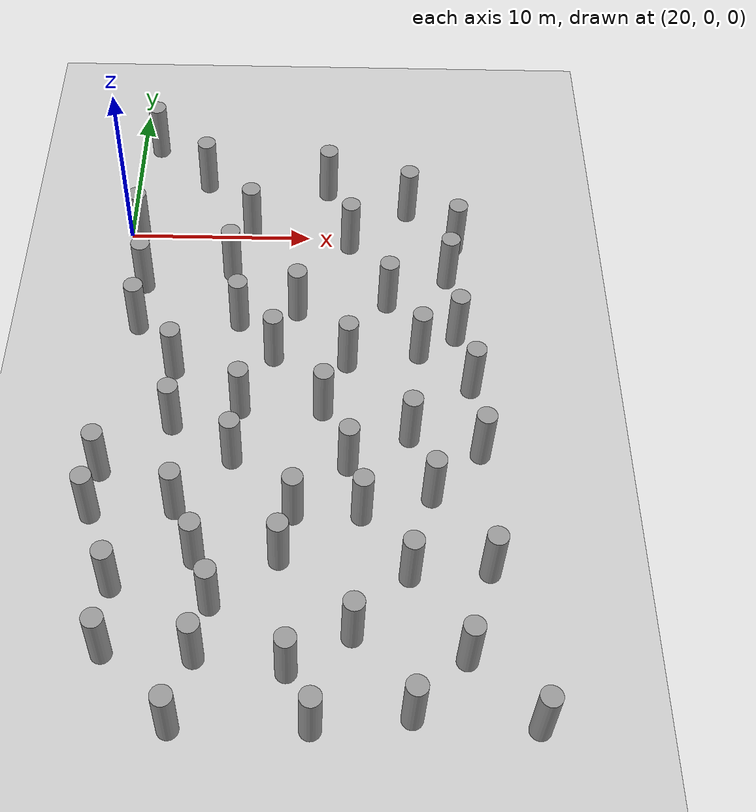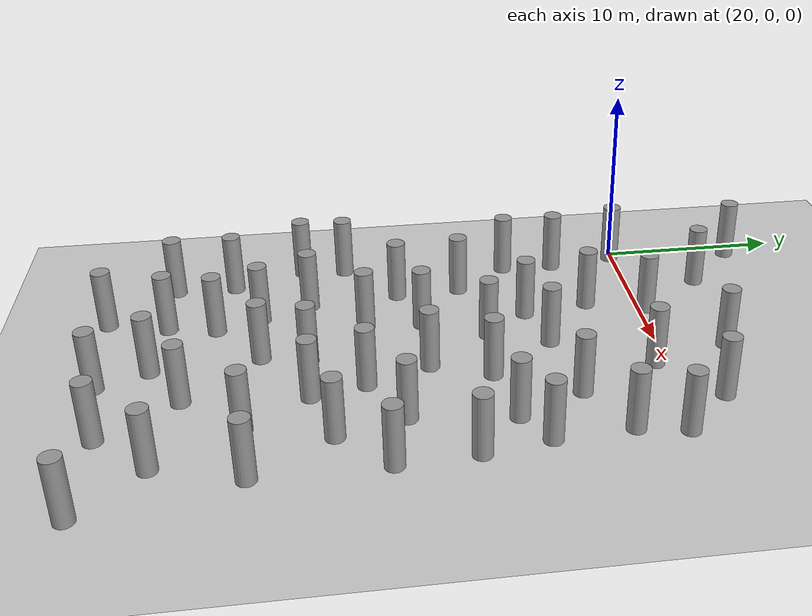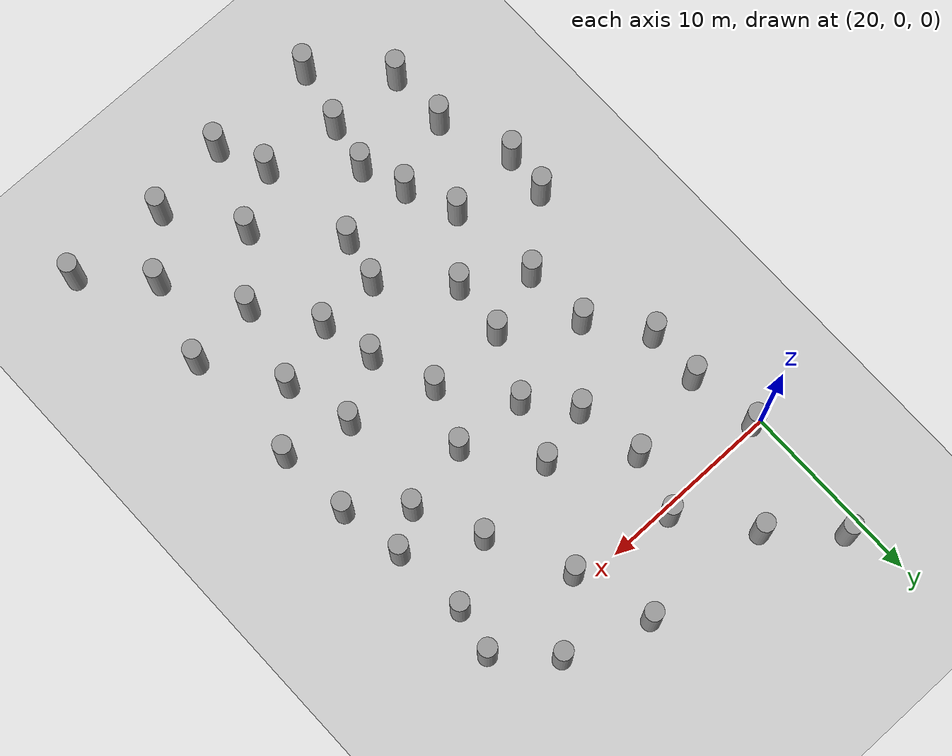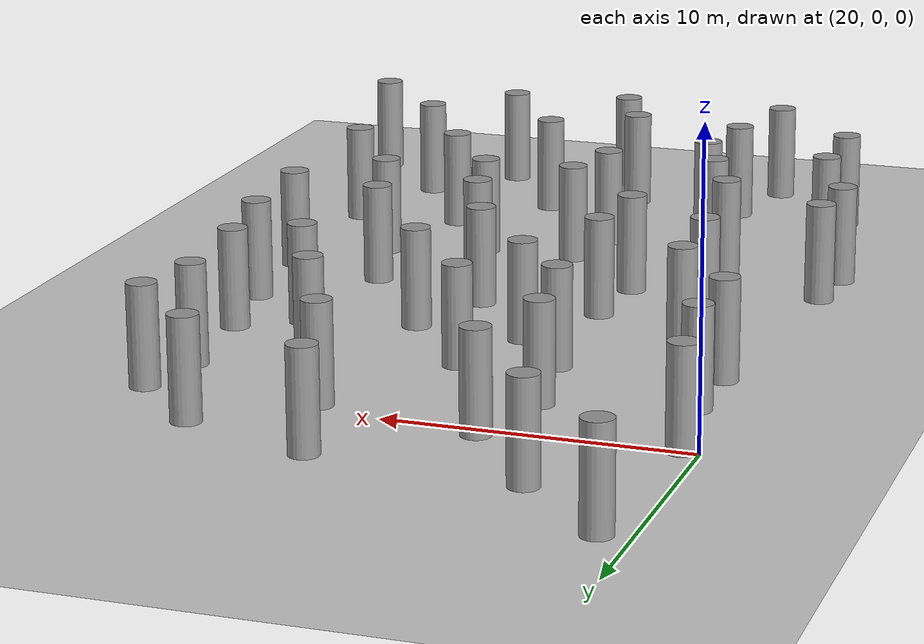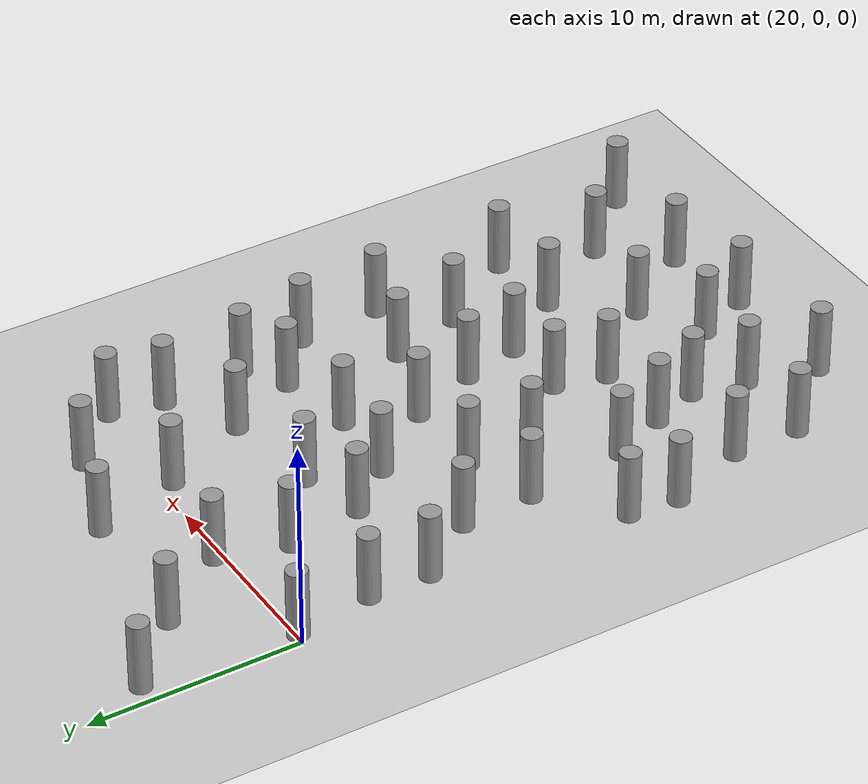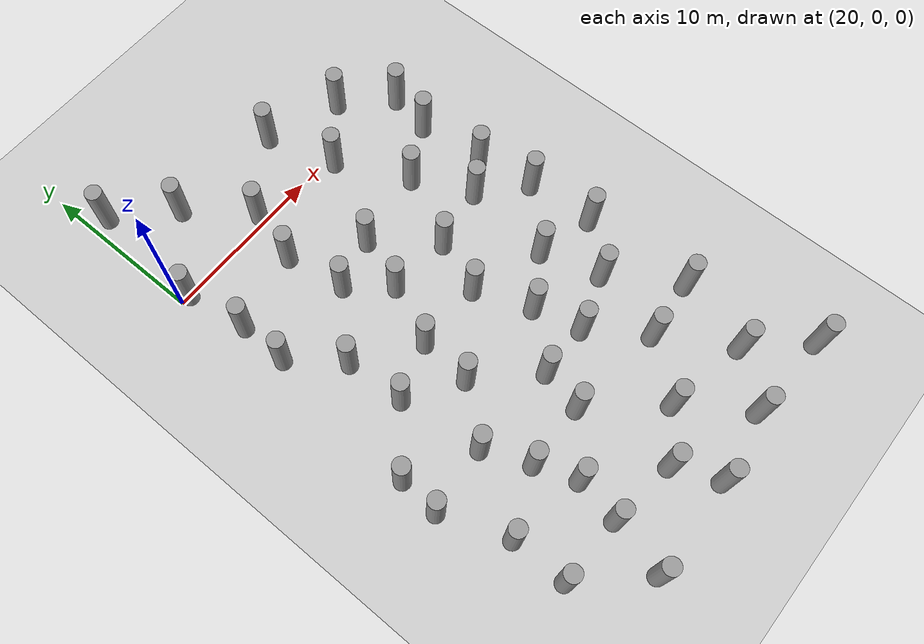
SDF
<sdf version="1.6">
 <world name="default">
  <model name="ground_plane">
   <static>1</static>
   <link name="link">
    <collision name="collision">
     <geometry><plane><normal>0 0 1</normal><size>5000 5000</size></plane></geometry>
     <surface><friction><ode><mu>1</mu><mu2>2</mu2></ode></friction></surface>
    </collision>
    <visual name="runway">
     <cast_shadows>0</cast_shadows>
     <geometry><plane><normal>0 0 1</normal><size>700 700</size></plane></geometry>
     <material>
      <script><uri>file://media/materials/scripts/gazebo.material</uri><name>Gazebo/Gray</name></script>
     </material>
    </visual>
   </link>
  </model>
  <model name="unit_cylinder_clone_0_clone_clone_8">
   <link name="link">
    <inertial>
     <mass>1</mass>
     <inertia><ixx>0.145833</ixx><ixy>0</ixy><ixz>0</ixz><iyy>0.145833</iyy><iyz>0</iyz><izz>0.125</izz></inertia>
    </inertial>
    <gravity>0</gravity>
    <visual name="visual">
     <geometry><cylinder><radius>0.5</radius><length>3.42215</length></cylinder></geometry>
     <material>
      <script><name>Gazebo/Grey</name><uri>file://media/materials/scripts/gazebo.material</uri></script>
      <shader type="pixel"><normal_map>__default__</normal_map></shader>
     </material>
    </visual>
   </link>
   <static>0</static>
   <pose>20.5566 -0.116077 1.71107 0 0 -0.000115</pose>
  </model>
  <model name="unit_cylinder_clone_0_clone_clone_10">
   <link name="link">
    <inertial>
     <mass>1</mass>
     <inertia><ixx>0.145833</ixx><ixy>0</ixy><ixz>0</ixz><iyy>0.145833</iyy><iyz>0</iyz><izz>0.125</izz></inertia>
    </inertial>
    <gravity>0</gravity>
    <visual name="visual">
     <geometry><cylinder><radius>0.5</radius><length>3.42215</length></cylinder></geometry>
     <material>
      <script><name>Gazebo/Grey</name><uri>file://media/materials/scripts/gazebo.material</uri></script>
      <shader type="pixel"><normal_map>__default__</normal_map></shader>
     </material>
    </visual>
   </link>
   <static>0</static>
   <pose>25.8377 -2.81658 1.71107 0 0 -0.000115</pose>
  </model>
  <model name="unit_cylinder_clone_0_clone_clone_11">
   <link name="link">
    <inertial>
     <mass>1</mass>
     <inertia><ixx>0.145833</ixx><ixy>0</ixy><ixz>0</ixz><iyy>0.145833</iyy><iyz>0</iyz><izz>0.125</izz></inertia>
    </inertial>
    <gravity>0</gravity>
    <visual name="visual">
     <geometry><cylinder><radius>0.5</radius><length>3.42215</length></cylinder></geometry>
     <material>
      <script><name>Gazebo/Grey</name><uri>file://media/materials/scripts/gazebo.material</uri></script>
      <shader type="pixel"><normal_map>__default__</normal_map></shader>
     </material>
    </visual>
   </link>
   <static>0</static>
   <pose>21.0532 -6.77808 1.71107 0 0 -0.000115</pose>
  </model>
  <model name="unit_cylinder_clone_0_clone_clone_12">
   <link name="link">
    <inertial>
     <mass>1</mass>
     <inertia><ixx>0.145833</ixx><ixy>0</ixy><ixz>0</ixz><iyy>0.145833</iyy><iyz>0</iyz><izz>0.125</izz></inertia>
    </inertial>
    <gravity>0</gravity>
    <visual name="visual">
     <geometry><cylinder><radius>0.5</radius><length>3.42215</length></cylinder></geometry>
     <material>
      <script><name>Gazebo/Grey</name><uri>file://media/materials/scripts/gazebo.material</uri></script>
      <shader type="pixel"><normal_map>__default__</normal_map></shader>
     </material>
    </visual>
   </link>
   <static>0</static>
   <pose>32.2475 -0.639695 1.71107 0 0 -0.000115</pose>
  </model>
  <model name="unit_cylinder_clone_0_clone_clone_13">
   <link name="link">
    <inertial>
     <mass>1</mass>
     <inertia><ixx>0.145833</ixx><ixy>0</ixy><ixz>0</ixz><iyy>0.145833</iyy><iyz>0</iyz><izz>0.125</izz></inertia>
    </inertial>
    <gravity>0</gravity>
    <visual name="visual">
     <geometry><cylinder><radius>0.5</radius><length>3.42215</length></cylinder></geometry>
     <material>
      <script><name>Gazebo/Grey</name><uri>file://media/materials/scripts/gazebo.material</uri></script>
      <shader type="pixel"><normal_map>__default__</normal_map></shader>
     </material>
    </visual>
   </link>
   <static>0</static>
   <pose>26.7729 0.402254 1.71107 0 0 -0.000115</pose>
  </model>
  <model name="unit_cylinder_clone_0_clone_clone_14">
   <link name="link">
    <inertial>
     <mass>1</mass>
     <inertia><ixx>0.145833</ixx><ixy>0</ixy><ixz>0</ixz><iyy>0.145833</iyy><iyz>0</iyz><izz>0.125</izz></inertia>
    </inertial>
    <gravity>0</gravity>
    <visual name="visual">
     <geometry><cylinder><radius>0.5</radius><length>3.42215</length></cylinder></geometry>
     <material>
      <script><name>Gazebo/Grey</name><uri>file://media/materials/scripts/gazebo.material</uri></script>
      <shader type="pixel"><normal_map>__default__</normal_map></shader>
     </material>
    </visual>
   </link>
   <static>0</static>
   <pose>24.07 4.06268 1.71107 0 0 -0.000115</pose>
  </model>
  <model name="unit_cylinder_clone_0_clone_clone_15">
   <link name="link">
    <inertial>
     <mass>1</mass>
     <inertia><ixx>0.145833</ixx><ixy>0</ixy><ixz>0</ixz><iyy>0.145833</iyy><iyz>0</iyz><izz>0.125</izz></inertia>
    </inertial>
    <gravity>0</gravity>
    <visual name="visual">
     <geometry><cylinder><radius>0.5</radius><length>3.42215</length></cylinder></geometry>
     <material>
      <script><name>Gazebo/Grey</name><uri>file://media/materials/scripts/gazebo.material</uri></script>
      <shader type="pixel"><normal_map>__default__</normal_map></shader>
     </material>
    </visual>
   </link>
   <static>0</static>
   <pose>31 3.55903 1.71107 0 0 -0.000115</pose>
  </model>
  <model name="unit_cylinder_clone_0_clone_clone_16">
   <link name="link">
    <inertial>
     <mass>1</mass>
     <inertia><ixx>0.145833</ixx><ixy>0</ixy><ixz>0</ixz><iyy>0.145833</iyy><iyz>0</iyz><izz>0.125</izz></inertia>
    </inertial>
    <gravity>0</gravity>
    <visual name="visual">
     <geometry><cylinder><radius>0.5</radius><length>3.42215</length></cylinder></geometry>
     <material>
      <script><name>Gazebo/Grey</name><uri>file://media/materials/scripts/gazebo.material</uri></script>
      <shader type="pixel"><normal_map>__default__</normal_map></shader>
     </material>
    </visual>
   </link>
   <static>0</static>
   <pose>21 7 1.71107 0 0 -0.000115</pose>
  </model>
  <model name="unit_cylinder_clone_0_clone_clone_17">
   <link name="link">
    <inertial>
     <mass>1</mass>
     <inertia><ixx>0.145833</ixx><ixy>0</ixy><ixz>0</ixz><iyy>0.145833</iyy><iyz>0</iyz><izz>0.125</izz></inertia>
    </inertial>
    <gravity>0</gravity>
    <visual name="visual">
     <geometry><cylinder><radius>0.5</radius><length>3.42215</length></cylinder></geometry>
     <material>
      <script><name>Gazebo/Grey</name><uri>file://media/materials/scripts/gazebo.material</uri></script>
      <shader type="pixel"><normal_map>__default__</normal_map></shader>
     </material>
    </visual>
   </link>
   <static>0</static>
   <pose>35.4755 1.99846 1.71107 0 0 -0.000115</pose>
  </model>
  <model name="unit_cylinder_clone_0_clone_clone_18">
   <link name="link">
    <inertial>
     <mass>1</mass>
     <inertia><ixx>0.145833</ixx><ixy>0</ixy><ixz>0</ixz><iyy>0.145833</iyy><iyz>0</iyz><izz>0.125</izz></inertia>
    </inertial>
    <gravity>0</gravity>
    <visual name="visual">
     <geometry><cylinder><radius>0.5</radius><length>3.42215</length></cylinder></geometry>
     <material>
      <script><name>Gazebo/Grey</name><uri>file://media/materials/scripts/gazebo.material</uri></script>
      <shader type="pixel"><normal_map>__default__</normal_map></shader>
     </material>
    </visual>
   </link>
   <static>0</static>
   <pose>37.5335 -3.11037 1.71107 0 0 -0.000115</pose>
  </model>
  <model name="unit_cylinder_clone_0_clone_clone_19">
   <link name="link">
    <inertial>
     <mass>1</mass>
     <inertia><ixx>0.145833</ixx><ixy>0</ixy><ixz>0</ixz><iyy>0.145833</iyy><iyz>0</iyz><izz>0.125</izz></inertia>
    </inertial>
    <gravity>0</gravity>
    <visual name="visual">
     <geometry><cylinder><radius>0.5</radius><length>3.42215</length></cylinder></geometry>
     <material>
      <script><name>Gazebo/Grey</name><uri>file://media/materials/scripts/gazebo.material</uri></script>
      <shader type="pixel"><normal_map>__default__</normal_map></shader>
     </material>
    </visual>
   </link>
   <static>0</static>
   <pose>34.2685 -4.92029 1.71107 0 0 -0.000115</pose>
  </model>
  <model name="unit_cylinder_clone_0_clone_clone_20">
   <link name="link">
    <inertial>
     <mass>1</mass>
     <inertia><ixx>0.145833</ixx><ixy>0</ixy><ixz>0</ixz><iyy>0.145833</iyy><iyz>0</iyz><izz>0.125</izz></inertia>
    </inertial>
    <gravity>0</gravity>
    <visual name="visual">
     <geometry><cylinder><radius>0.5</radius><length>3.42215</length></cylinder></geometry>
     <material>
      <script><name>Gazebo/Grey</name><uri>file://media/materials/scripts/gazebo.material</uri></script>
      <shader type="pixel"><normal_map>__default__</normal_map></shader>
     </material>
    </visual>
   </link>
   <static>0</static>
   <pose>38.4674 -10.5798 1.71107 0 0 -0.000115</pose>
  </model>
  <model name="unit_cylinder_clone_0_clone_clone_21">
   <link name="link">
    <inertial>
     <mass>1</mass>
     <inertia><ixx>0.145833</ixx><ixy>0</ixy><ixz>0</ixz><iyy>0.145833</iyy><iyz>0</iyz><izz>0.125</izz></inertia>
    </inertial>
    <gravity>0</gravity>
    <visual name="visual">
     <geometry><cylinder><radius>0.5</radius><length>3.42215</length></cylinder></geometry>
     <material>
      <script><name>Gazebo/Grey</name><uri>file://media/materials/scripts/gazebo.material</uri></script>
      <shader type="pixel"><normal_map>__default__</normal_map></shader>
     </material>
    </visual>
   </link>
   <static>0</static>
   <pose>32.1445 -9.07488 1.71107 0 0 -0.000115</pose>
  </model>
  <model name="unit_cylinder_clone_0_clone_clone_22">
   <link name="link">
    <inertial>
     <mass>1</mass>
     <inertia><ixx>0.145833</ixx><ixy>0</ixy><ixz>0</ixz><iyy>0.145833</iyy><iyz>0</iyz><izz>0.125</izz></inertia>
    </inertial>
    <gravity>0</gravity>
    <visual name="visual">
     <geometry><cylinder><radius>0.5</radius><length>3.42215</length></cylinder></geometry>
     <material>
      <script><name>Gazebo/Grey</name><uri>file://media/materials/scripts/gazebo.material</uri></script>
      <shader type="pixel"><normal_map>__default__</normal_map></shader>
     </material>
    </visual>
   </link>
   <static>0</static>
   <pose>29.4758 -5.60259 1.71107 0 0 -0.000115</pose>
  </model>
  <model name="unit_cylinder_clone_0_clone_clone_23">
   <link name="link">
    <inertial>
     <mass>1</mass>
     <inertia><ixx>0.145833</ixx><ixy>0</ixy><ixz>0</ixz><iyy>0.145833</iyy><iyz>0</iyz><izz>0.125</izz></inertia>
    </inertial>
    <gravity>0</gravity>
    <visual name="visual">
     <geometry><cylinder><radius>0.5</radius><length>3.42215</length></cylinder></geometry>
     <material>
      <script><name>Gazebo/Grey</name><uri>file://media/materials/scripts/gazebo.material</uri></script>
      <shader type="pixel"><normal_map>__default__</normal_map></shader>
     </material>
    </visual>
   </link>
   <static>0</static>
   <pose>38.0442 -0.58433 1.71107 0 0 -0.000115</pose>
  </model>
  <model name="unit_cylinder_clone_0_clone_clone_24">
   <link name="link">
    <inertial>
     <mass>1</mass>
     <inertia><ixx>0.145833</ixx><ixy>0</ixy><ixz>0</ixz><iyy>0.145833</iyy><iyz>0</iyz><izz>0.125</izz></inertia>
    </inertial>
    <gravity>0</gravity>
    <visual name="visual">
     <geometry><cylinder><radius>0.5</radius><length>3.42215</length></cylinder></geometry>
     <material>
      <script><name>Gazebo/Grey</name><uri>file://media/materials/scripts/gazebo.material</uri></script>
      <shader type="pixel"><normal_map>__default__</normal_map></shader>
     </material>
    </visual>
   </link>
   <static>0</static>
   <pose>37.8456 -7.15705 1.71107 0 0 -0.000115</pose>
  </model>
  <model name="unit_cylinder_clone_0_clone_clone_25">
   <link name="link">
    <inertial>
     <mass>1</mass>
     <inertia><ixx>0.145833</ixx><ixy>0</ixy><ixz>0</ixz><iyy>0.145833</iyy><iyz>0</iyz><izz>0.125</izz></inertia>
    </inertial>
    <gravity>0</gravity>
    <visual name="visual">
     <geometry><cylinder><radius>0.5</radius><length>3.42215</length></cylinder></geometry>
     <material>
      <script><name>Gazebo/Grey</name><uri>file://media/materials/scripts/gazebo.material</uri></script>
      <shader type="pixel"><normal_map>__default__</normal_map></shader>
     </material>
    </visual>
   </link>
   <static>0</static>
   <pose>35.8829 -8.38323 1.71107 0 0 -0.000115</pose>
  </model>
  <model name="unit_cylinder_clone_0_clone_clone_26">
   <link name="link">
    <inertial>
     <mass>1</mass>
     <inertia><ixx>0.145833</ixx><ixy>0</ixy><ixz>0</ixz><iyy>0.145833</iyy><iyz>0</iyz><izz>0.125</izz></inertia>
    </inertial>
    <gravity>0</gravity>
    <visual name="visual">
     <geometry><cylinder><radius>0.5</radius><length>3.42215</length></cylinder></geometry>
     <material>
      <script><name>Gazebo/Grey</name><uri>file://media/materials/scripts/gazebo.material</uri></script>
      <shader type="pixel"><normal_map>__default__</normal_map></shader>
     </material>
    </visual>
   </link>
   <static>0</static>
   <pose>35.2555 -13.7054 1.71107 0 0 -0.000115</pose>
  </model>
  <model name="unit_cylinder_clone_0_clone_clone_27">
   <link name="link">
    <inertial>
     <mass>1</mass>
     <inertia><ixx>0.145833</ixx><ixy>0</ixy><ixz>0</ixz><iyy>0.145833</iyy><iyz>0</iyz><izz>0.125</izz></inertia>
    </inertial>
    <gravity>0</gravity>
    <visual name="visual">
     <geometry><cylinder><radius>0.5</radius><length>3.42215</length></cylinder></geometry>
     <material>
      <script><name>Gazebo/Grey</name><uri>file://media/materials/scripts/gazebo.material</uri></script>
      <shader type="pixel"><normal_map>__default__</normal_map></shader>
     </material>
    </visual>
   </link>
   <static>0</static>
   <pose>30.9358 -12.1807 1.71107 0 0 -0.000115</pose>
  </model>
  <model name="unit_cylinder_clone_0_clone_clone_28">
   <link name="link">
    <inertial>
     <mass>1</mass>
     <inertia><ixx>0.145833</ixx><ixy>0</ixy><ixz>0</ixz><iyy>0.145833</iyy><iyz>0</iyz><izz>0.125</izz></inertia>
    </inertial>
    <gravity>0</gravity>
    <visual name="visual">
     <geometry><cylinder><radius>0.5</radius><length>3.42215</length></cylinder></geometry>
     <material>
      <script><name>Gazebo/Grey</name><uri>file://media/materials/scripts/gazebo.material</uri></script>
      <shader type="pixel"><normal_map>__default__</normal_map></shader>
     </material>
    </visual>
   </link>
   <static>0</static>
   <pose>32.2011 -15.4854 1.71107 0 0 -0.000115</pose>
  </model>
  <model name="unit_cylinder_clone_0_clone_clone_29">
   <link name="link">
    <inertial>
     <mass>1</mass>
     <inertia><ixx>0.145833</ixx><ixy>0</ixy><ixz>0</ixz><iyy>0.145833</iyy><iyz>0</iyz><izz>0.125</izz></inertia>
    </inertial>
    <gravity>0</gravity>
    <visual name="visual">
     <geometry><cylinder><radius>0.5</radius><length>3.42215</length></cylinder></geometry>
     <material>
      <script><name>Gazebo/Grey</name><uri>file://media/materials/scripts/gazebo.material</uri></script>
      <shader type="pixel"><normal_map>__default__</normal_map></shader>
     </material>
    </visual>
   </link>
   <static>0</static>
   <pose>38.7271 -14.6175 1.71107 0 0 -0.000115</pose>
  </model>
  <model name="unit_cylinder_clone_0_clone_clone_30">
   <link name="link">
    <inertial>
     <mass>1</mass>
     <inertia><ixx>0.145833</ixx><ixy>0</ixy><ixz>0</ixz><iyy>0.145833</iyy><iyz>0</iyz><izz>0.125</izz></inertia>
    </inertial>
    <gravity>0</gravity>
    <visual name="visual">
     <geometry><cylinder><radius>0.5</radius><length>3.42215</length></cylinder></geometry>
     <material>
      <script><name>Gazebo/Grey</name><uri>file://media/materials/scripts/gazebo.material</uri></script>
      <shader type="pixel"><normal_map>__default__</normal_map></shader>
     </material>
    </visual>
   </link>
   <static>0</static>
   <pose>36.249 -17.2065 1.71107 0 0 -0.000115</pose>
  </model>
  <model name="unit_cylinder_clone_0_clone_clone_31">
   <link name="link">
    <inertial>
     <mass>1</mass>
     <inertia><ixx>0.145833</ixx><ixy>0</ixy><ixz>0</ixz><iyy>0.145833</iyy><iyz>0</iyz><izz>0.125</izz></inertia>
    </inertial>
    <gravity>0</gravity>
    <visual name="visual">
     <geometry><cylinder><radius>0.5</radius><length>3.42215</length></cylinder></geometry>
     <material>
      <script><name>Gazebo/Grey</name><uri>file://media/materials/scripts/gazebo.material</uri></script>
      <shader type="pixel"><normal_map>__default__</normal_map></shader>
     </material>
    </visual>
   </link>
   <static>0</static>
   <pose>28.3271 -8.74701 1.71107 0 0 -0.000115</pose>
  </model>
  <model name="unit_cylinder_clone_0_clone_clone_32">
   <link name="link">
    <inertial>
     <mass>1</mass>
     <inertia><ixx>0.145833</ixx><ixy>0</ixy><ixz>0</ixz><iyy>0.145833</iyy><iyz>0</iyz><izz>0.125</izz></inertia>
    </inertial>
    <gravity>0</gravity>
    <visual name="visual">
     <geometry><cylinder><radius>0.5</radius><length>3.42215</length></cylinder></geometry>
     <material>
      <script><name>Gazebo/Grey</name><uri>file://media/materials/scripts/gazebo.material</uri></script>
      <shader type="pixel"><normal_map>__default__</normal_map></shader>
     </material>
    </visual>
   </link>
   <static>0</static>
   <pose>26.4165 -6.41392 1.71107 0 0 -0.000115</pose>
  </model>
  <model name="unit_cylinder_clone_0_clone_clone_33">
   <link name="link">
    <inertial>
     <mass>1</mass>
     <inertia><ixx>0.145833</ixx><ixy>0</ixy><ixz>0</ixz><iyy>0.145833</iyy><iyz>0</iyz><izz>0.125</izz></inertia>
    </inertial>
    <gravity>0</gravity>
    <visual name="visual">
     <geometry><cylinder><radius>0.5</radius><length>3.42215</length></cylinder></geometry>
     <material>
      <script><name>Gazebo/Grey</name><uri>file://media/materials/scripts/gazebo.material</uri></script>
      <shader type="pixel"><normal_map>__default__</normal_map></shader>
     </material>
    </visual>
   </link>
   <static>0</static>
   <pose>32.8631 -18.2926 1.71107 0 0 -0.000115</pose>
  </model>
  <model name="unit_cylinder_clone_0_clone_clone_34">
   <link name="link">
    <inertial>
     <mass>1</mass>
     <inertia><ixx>0.145833</ixx><ixy>0</ixy><ixz>0</ixz><iyy>0.145833</iyy><iyz>0</iyz><izz>0.125</izz></inertia>
    </inertial>
    <gravity>0</gravity>
    <visual name="visual">
     <geometry><cylinder><radius>0.5</radius><length>3.42215</length></cylinder></geometry>
     <material>
      <script><name>Gazebo/Grey</name><uri>file://media/materials/scripts/gazebo.material</uri></script>
      <shader type="pixel"><normal_map>__default__</normal_map></shader>
     </material>
    </visual>
   </link>
   <static>0</static>
   <pose>38.8045 -21.2037 1.71107 0 0 -0.000115</pose>
  </model>
  <model name="unit_cylinder_clone_0_clone_clone_35">
   <link name="link">
    <inertial>
     <mass>1</mass>
     <inertia><ixx>0.145833</ixx><ixy>0</ixy><ixz>0</ixz><iyy>0.145833</iyy><iyz>0</iyz><izz>0.125</izz></inertia>
    </inertial>
    <gravity>0</gravity>
    <visual name="visual">
     <geometry><cylinder><radius>0.5</radius><length>3.42215</length></cylinder></geometry>
     <material>
      <script><name>Gazebo/Grey</name><uri>file://media/materials/scripts/gazebo.material</uri></script>
      <shader type="pixel"><normal_map>__default__</normal_map></shader>
     </material>
    </visual>
   </link>
   <static>0</static>
   <pose>35.0796 -21.5183 1.71107 0 0 -0.000115</pose>
  </model>
  <model name="unit_cylinder_clone_0_clone_clone_36">
   <link name="link">
    <inertial>
     <mass>1</mass>
     <inertia><ixx>0.145833</ixx><ixy>0</ixy><ixz>0</ixz><iyy>0.145833</iyy><iyz>0</iyz><izz>0.125</izz></inertia>
    </inertial>
    <gravity>0</gravity>
    <visual name="visual">
     <geometry><cylinder><radius>0.5</radius><length>3.42215</length></cylinder></geometry>
     <material>
      <script><name>Gazebo/Grey</name><uri>file://media/materials/scripts/gazebo.material</uri></script>
      <shader type="pixel"><normal_map>__default__</normal_map></shader>
     </material>
    </visual>
   </link>
   <static>0</static>
   <pose>37.5225 -25.6124 1.71107 0 0 -0.000115</pose>
  </model>
  <model name="unit_cylinder_clone_0_clone_clone_37">
   <link name="link">
    <inertial>
     <mass>1</mass>
     <inertia><ixx>0.145833</ixx><ixy>0</ixy><ixz>0</ixz><iyy>0.145833</iyy><iyz>0</iyz><izz>0.125</izz></inertia>
    </inertial>
    <gravity>0</gravity>
    <visual name="visual">
     <geometry><cylinder><radius>0.5</radius><length>3.42215</length></cylinder></geometry>
     <material>
      <script><name>Gazebo/Grey</name><uri>file://media/materials/scripts/gazebo.material</uri></script>
      <shader type="pixel"><normal_map>__default__</normal_map></shader>
     </material>
    </visual>
   </link>
   <static>0</static>
   <pose>32.4353 -24.5963 1.71107 0 0 -0.000115</pose>
  </model>
  <model name="unit_cylinder_clone_0_clone_clone_38">
   <link name="link">
    <inertial>
     <mass>1</mass>
     <inertia><ixx>0.145833</ixx><ixy>0</ixy><ixz>0</ixz><iyy>0.145833</iyy><iyz>0</iyz><izz>0.125</izz></inertia>
    </inertial>
    <gravity>0</gravity>
    <visual name="visual">
     <geometry><cylinder><radius>0.5</radius><length>3.42215</length></cylinder></geometry>
     <material>
      <script><name>Gazebo/Grey</name><uri>file://media/materials/scripts/gazebo.material</uri></script>
      <shader type="pixel"><normal_map>__default__</normal_map></shader>
     </material>
    </visual>
   </link>
   <static>0</static>
   <pose>29.018 -20.7801 1.71107 0 0 -0.000115</pose>
  </model>
  <model name="unit_cylinder_clone_0_clone_clone_39">
   <link name="link">
    <inertial>
     <mass>1</mass>
     <inertia><ixx>0.145833</ixx><ixy>0</ixy><ixz>0</ixz><iyy>0.145833</iyy><iyz>0</iyz><izz>0.125</izz></inertia>
    </inertial>
    <gravity>0</gravity>
    <visual name="visual">
     <geometry><cylinder><radius>0.5</radius><length>3.42215</length></cylinder></geometry>
     <material>
      <script><name>Gazebo/Grey</name><uri>file://media/materials/scripts/gazebo.material</uri></script>
      <shader type="pixel"><normal_map>__default__</normal_map></shader>
     </material>
    </visual>
   </link>
   <static>0</static>
   <pose>35.0216 -28.3657 1.71107 0 0 -0.000115</pose>
  </model>
  <model name="unit_cylinder_clone_0_clone_clone_40">
   <link name="link">
    <inertial>
     <mass>1</mass>
     <inertia><ixx>0.145833</ixx><ixy>0</ixy><ixz>0</ixz><iyy>0.145833</iyy><iyz>0</iyz><izz>0.125</izz></inertia>
    </inertial>
    <gravity>0</gravity>
    <visual name="visual">
     <geometry><cylinder><radius>0.5</radius><length>3.42215</length></cylinder></geometry>
     <material>
      <script><name>Gazebo/Grey</name><uri>file://media/materials/scripts/gazebo.material</uri></script>
      <shader type="pixel"><normal_map>__default__</normal_map></shader>
     </material>
    </visual>
   </link>
   <static>0</static>
   <pose>40.4627 -28.7053 1.71107 0 0 -0.000115</pose>
  </model>
  <model name="unit_cylinder_clone_0_clone_clone_41">
   <link name="link">
    <inertial>
     <mass>1</mass>
     <inertia><ixx>0.145833</ixx><ixy>0</ixy><ixz>0</ixz><iyy>0.145833</iyy><iyz>0</iyz><izz>0.125</izz></inertia>
    </inertial>
    <gravity>0</gravity>
    <visual name="visual">
     <geometry><cylinder><radius>0.5</radius><length>3.42215</length></cylinder></geometry>
     <material>
      <script><name>Gazebo/Grey</name><uri>file://media/materials/scripts/gazebo.material</uri></script>
      <shader type="pixel"><normal_map>__default__</normal_map></shader>
     </material>
    </visual>
   </link>
   <static>0</static>
   <pose>29.5475 -26.3741 1.71107 0 0 -0.000115</pose>
  </model>
  <model name="unit_cylinder_clone_0_clone_clone_42">
   <link name="link">
    <inertial>
     <mass>1</mass>
     <inertia><ixx>0.145833</ixx><ixy>0</ixy><ixz>0</ixz><iyy>0.145833</iyy><iyz>0</iyz><izz>0.125</izz></inertia>
    </inertial>
    <gravity>0</gravity>
    <visual name="visual">
     <geometry><cylinder><radius>0.5</radius><length>3.42215</length></cylinder></geometry>
     <material>
      <script><name>Gazebo/Grey</name><uri>file://media/materials/scripts/gazebo.material</uri></script>
      <shader type="pixel"><normal_map>__default__</normal_map></shader>
     </material>
    </visual>
   </link>
   <static>0</static>
   <pose>25.9562 -23.2089 1.71107 0 0 -0.000115</pose>
  </model>
  <model name="unit_cylinder_clone_0_clone_clone_43">
   <link name="link">
    <inertial>
     <mass>1</mass>
     <inertia><ixx>0.145833</ixx><ixy>0</ixy><ixz>0</ixz><iyy>0.145833</iyy><iyz>0</iyz><izz>0.125</izz></inertia>
    </inertial>
    <gravity>0</gravity>
    <visual name="visual">
     <geometry><cylinder><radius>0.5</radius><length>3.42215</length></cylinder></geometry>
     <material>
      <script><name>Gazebo/Grey</name><uri>file://media/materials/scripts/gazebo.material</uri></script>
      <shader type="pixel"><normal_map>__default__</normal_map></shader>
     </material>
    </visual>
   </link>
   <static>0</static>
   <pose>30.661 -28.9742 1.71107 0 0 -0.000115</pose>
  </model>
  <model name="unit_cylinder_clone_0_clone_clone_44">
   <link name="link">
    <inertial>
     <mass>1</mass>
     <inertia><ixx>0.145833</ixx><ixy>0</ixy><ixz>0</ixz><iyy>0.145833</iyy><iyz>0</iyz><izz>0.125</izz></inertia>
    </inertial>
    <gravity>0</gravity>
    <visual name="visual">
     <geometry><cylinder><radius>0.5</radius><length>3.42215</length></cylinder></geometry>
     <material>
      <script><name>Gazebo/Grey</name><uri>file://media/materials/scripts/gazebo.material</uri></script>
      <shader type="pixel"><normal_map>__default__</normal_map></shader>
     </material>
    </visual>
   </link>
   <static>0</static>
   <pose>29.6007 -18.3285 1.71107 0 0 -0.000115</pose>
  </model>
  <model name="unit_cylinder_clone_0_clone_clone_45">
   <link name="link">
    <inertial>
     <mass>1</mass>
     <inertia><ixx>0.145833</ixx><ixy>0</ixy><ixz>0</ixz><iyy>0.145833</iyy><iyz>0</iyz><izz>0.125</izz></inertia>
    </inertial>
    <gravity>0</gravity>
    <visual name="visual">
     <geometry><cylinder><radius>0.5</radius><length>3.42215</length></cylinder></geometry>
     <material>
      <script><name>Gazebo/Grey</name><uri>file://media/materials/scripts/gazebo.material</uri></script>
      <shader type="pixel"><normal_map>__default__</normal_map></shader>
     </material>
    </visual>
   </link>
   <static>0</static>
   <pose>26.5197 -15.216 1.71107 0 0 -0.000115</pose>
  </model>
  <model name="unit_cylinder_clone_0_clone_clone_46">
   <link name="link">
    <inertial>
     <mass>1</mass>
     <inertia><ixx>0.145833</ixx><ixy>0</ixy><ixz>0</ixz><iyy>0.145833</iyy><iyz>0</iyz><izz>0.125</izz></inertia>
    </inertial>
    <gravity>0</gravity>
    <visual name="visual">
     <geometry><cylinder><radius>0.5</radius><length>3.42215</length></cylinder></geometry>
     <material>
      <script><name>Gazebo/Grey</name><uri>file://media/materials/scripts/gazebo.material</uri></script>
      <shader type="pixel"><normal_map>__default__</normal_map></shader>
     </material>
    </visual>
   </link>
   <static>0</static>
   <pose>26.762 -12.1574 1.71107 0 0 -0.000115</pose>
  </model>
  <model name="unit_cylinder_clone_0_clone_clone_47">
   <link name="link">
    <inertial>
     <mass>1</mass>
     <inertia><ixx>0.145833</ixx><ixy>0</ixy><ixz>0</ixz><iyy>0.145833</iyy><iyz>0</iyz><izz>0.125</izz></inertia>
    </inertial>
    <gravity>0</gravity>
    <visual name="visual">
     <geometry><cylinder><radius>0.5</radius><length>3.42215</length></cylinder></geometry>
     <material>
      <script><name>Gazebo/Grey</name><uri>file://media/materials/scripts/gazebo.material</uri></script>
      <shader type="pixel"><normal_map>__default__</normal_map></shader>
     </material>
    </visual>
   </link>
   <static>0</static>
   <pose>23.2155 -9.72788 1.71107 0 0 -0.000115</pose>
  </model>
  <model name="unit_cylinder_clone_0_clone_clone_48">
   <link name="link">
    <inertial>
     <mass>1</mass>
     <inertia><ixx>0.145833</ixx><ixy>0</ixy><ixz>0</ixz><iyy>0.145833</iyy><iyz>0</iyz><izz>0.125</izz></inertia>
    </inertial>
    <gravity>0</gravity>
    <visual name="visual">
     <geometry><cylinder><radius>0.5</radius><length>3.42215</length></cylinder></geometry>
     <material>
      <script><name>Gazebo/Grey</name><uri>file://media/materials/scripts/gazebo.material</uri></script>
      <shader type="pixel"><normal_map>__default__</normal_map></shader>
     </material>
    </visual>
   </link>
   <static>0</static>
   <pose>21.1196 -3.84253 1.71107 0 0 -0.000115</pose>
  </model>
  <model name="unit_cylinder_clone_0_clone_clone_50">
   <link name="link">
    <inertial>
     <mass>1</mass>
     <inertia><ixx>0.145833</ixx><ixy>0</ixy><ixz>0</ixz><iyy>0.145833</iyy><iyz>0</iyz><izz>0.125</izz></inertia>
    </inertial>
    <gravity>0</gravity>
    <visual name="visual">
     <geometry><cylinder><radius>0.5</radius><length>3.42215</length></cylinder></geometry>
     <material>
      <script><name>Gazebo/Grey</name><uri>file://media/materials/scripts/gazebo.material</uri></script>
      <shader type="pixel"><normal_map>__default__</normal_map></shader>
     </material>
    </visual>
   </link>
   <static>0</static>
   <pose>23.413 -13.25 1.71107 0 0 -0.000115</pose>
  </model>
  <model name="unit_cylinder_clone_0_clone_clone_51">
   <link name="link">
    <inertial>
     <mass>1</mass>
     <inertia><ixx>0.145833</ixx><ixy>0</ixy><ixz>0</ixz><iyy>0.145833</iyy><iyz>0</iyz><izz>0.125</izz></inertia>
    </inertial>
    <gravity>0</gravity>
    <visual name="visual">
     <geometry><cylinder><radius>0.5</radius><length>3.42215</length></cylinder></geometry>
     <material>
      <script><name>Gazebo/Grey</name><uri>file://media/materials/scripts/gazebo.material</uri></script>
      <shader type="pixel"><normal_map>__default__</normal_map></shader>
     </material>
    </visual>
   </link>
   <static>0</static>
   <pose>23.9594 -18.1779 1.71107 0 0 -0.000115</pose>
  </model>
  <model name="unit_cylinder_clone_0_clone_clone_52">
   <link name="link">
    <inertial>
     <mass>1</mass>
     <inertia><ixx>0.145833</ixx><ixy>0</ixy><ixz>0</ixz><iyy>0.145833</iyy><iyz>0</iyz><izz>0.125</izz></inertia>
    </inertial>
    <gravity>0</gravity>
    <visual name="visual">
     <geometry><cylinder><radius>0.5</radius><length>3.42215</length></cylinder></geometry>
     <material>
      <script><name>Gazebo/Grey</name><uri>file://media/materials/scripts/gazebo.material</uri></script>
      <shader type="pixel"><normal_map>__default__</normal_map></shader>
     </material>
    </visual>
   </link>
   <static>0</static>
   <pose>25.0882 -20.8483 1.71107 0 0 -0.000115</pose>
  </model>
  <model name="unit_cylinder_clone_0_clone_clone_53">
   <link name="link">
    <inertial>
     <mass>1</mass>
     <inertia><ixx>0.145833</ixx><ixy>0</ixy><ixz>0</ixz><iyy>0.145833</iyy><iyz>0</iyz><izz>0.125</izz></inertia>
    </inertial>
    <gravity>0</gravity>
    <visual name="visual">
     <geometry><cylinder><radius>0.5</radius><length>3.42215</length></cylinder></geometry>
     <material>
      <script><name>Gazebo/Grey</name><uri>file://media/materials/scripts/gazebo.material</uri></script>
      <shader type="pixel"><normal_map>__default__</normal_map></shader>
     </material>
    </visual>
   </link>
   <static>0</static>
   <pose>25.4319 -25.813 1.71107 0 0 -0.000115</pose>
  </model>
  <model name="unit_cylinder_clone_0_clone_clone_54">
   <link name="link">
    <inertial>
     <mass>1</mass>
     <inertia><ixx>0.145833</ixx><ixy>0</ixy><ixz>0</ixz><iyy>0.145833</iyy><iyz>0</iyz><izz>0.125</izz></inertia>
    </inertial>
    <gravity>0</gravity>
    <visual name="visual">
     <geometry><cylinder><radius>0.5</radius><length>3.42215</length></cylinder></geometry>
     <material>
      <script><name>Gazebo/Grey</name><uri>file://media/materials/scripts/gazebo.material</uri></script>
      <shader type="pixel"><normal_map>__default__</normal_map></shader>
     </material>
    </visual>
   </link>
   <static>0</static>
   <pose>24.5936 -29.0875 1.71107 0 0 -0.000115</pose>
  </model>
  <model name="unit_cylinder_clone_0_clone_clone_56">
   <link name="link">
    <inertial>
     <mass>1</mass>
     <inertia><ixx>0.145833</ixx><ixy>0</ixy><ixz>0</ixz><iyy>0.145833</iyy><iyz>0</iyz><izz>0.125</izz></inertia>
    </inertial>
    <gravity>0</gravity>
    <visual name="visual">
     <geometry><cylinder><radius>0.5</radius><length>3.42215</length></cylinder></geometry>
     <material>
      <script><name>Gazebo/Grey</name><uri>file://media/materials/scripts/gazebo.material</uri></script>
      <shader type="pixel"><normal_map>__default__</normal_map></shader>
     </material>
    </visual>
   </link>
   <static>0</static>
   <pose>21.3444 -25.6763 1.71107 0 0 -0.000115</pose>
  </model>
  <model name="unit_cylinder_clone_0_clone_clone_57">
   <link name="link">
    <inertial>
     <mass>1</mass>
     <inertia><ixx>0.145833</ixx><ixy>0</ixy><ixz>0</ixz><iyy>0.145833</iyy><iyz>0</iyz><izz>0.125</izz></inertia>
    </inertial>
    <gravity>0</gravity>
    <visual name="visual">
     <geometry><cylinder><radius>0.5</radius><length>3.42215</length></cylinder></geometry>
     <material>
      <script><name>Gazebo/Grey</name><uri>file://media/materials/scripts/gazebo.material</uri></script>
      <shader type="pixel"><normal_map>__default__</normal_map></shader>
     </material>
    </visual>
   </link>
   <static>0</static>
   <pose>21.3515 -22.3974 1.71107 0 0 -0.000115</pose>
  </model>
  <model name="unit_cylinder_clone_0_clone_clone_58">
   <link name="link">
    <inertial>
     <mass>1</mass>
     <inertia><ixx>0.145833</ixx><ixy>0</ixy><ixz>0</ixz><iyy>0.145833</iyy><iyz>0</iyz><izz>0.125</izz></inertia>
    </inertial>
    <gravity>0</gravity>
    <visual name="visual">
     <geometry><cylinder><radius>0.5</radius><length>3.42215</length></cylinder></geometry>
     <material>
      <script><name>Gazebo/Grey</name><uri>file://media/materials/scripts/gazebo.material</uri></script>
      <shader type="pixel"><normal_map>__default__</normal_map></shader>
     </material>
    </visual>
   </link>
   <static>0</static>
   <pose>19.9196 -18.5137 1.71107 0 0 -0.000115</pose>
  </model>
  <model name="unit_cylinder_clone_0_clone_clone_59">
   <link name="link">
    <inertial>
     <mass>1</mass>
     <inertia><ixx>0.145833</ixx><ixy>0</ixy><ixz>0</ixz><iyy>0.145833</iyy><iyz>0</iyz><izz>0.125</izz></inertia>
    </inertial>
    <gravity>0</gravity>
    <visual name="visual">
     <geometry><cylinder><radius>0.5</radius><length>3.42215</length></cylinder></geometry>
     <material>
      <script><name>Gazebo/Grey</name><uri>file://media/materials/scripts/gazebo.material</uri></script>
      <shader type="pixel"><normal_map>__default__</normal_map></shader>
     </material>
    </visual>
   </link>
   <static>0</static>
   <pose>20.1209 -16.1005 1.71107 0 0 -0.000115</pose>
  </model>
 </world>
</sdf>
